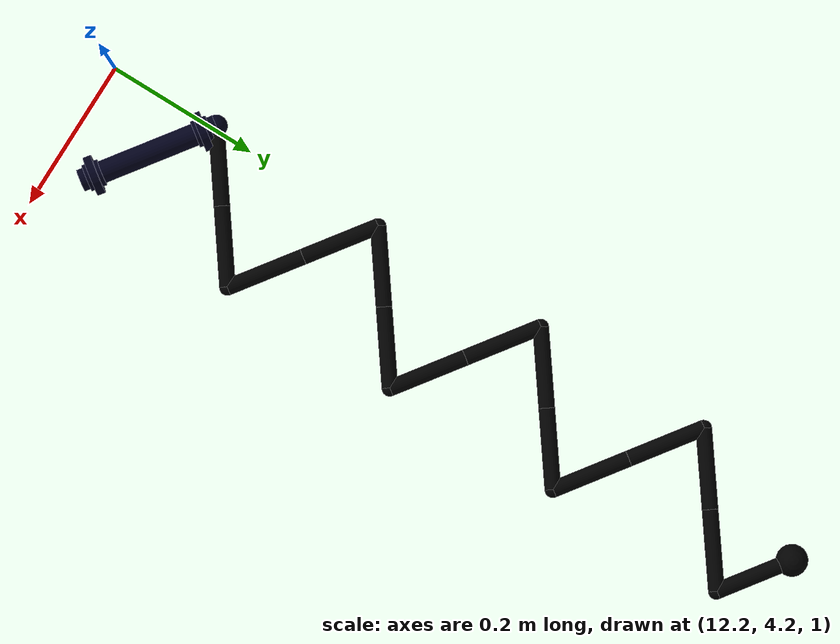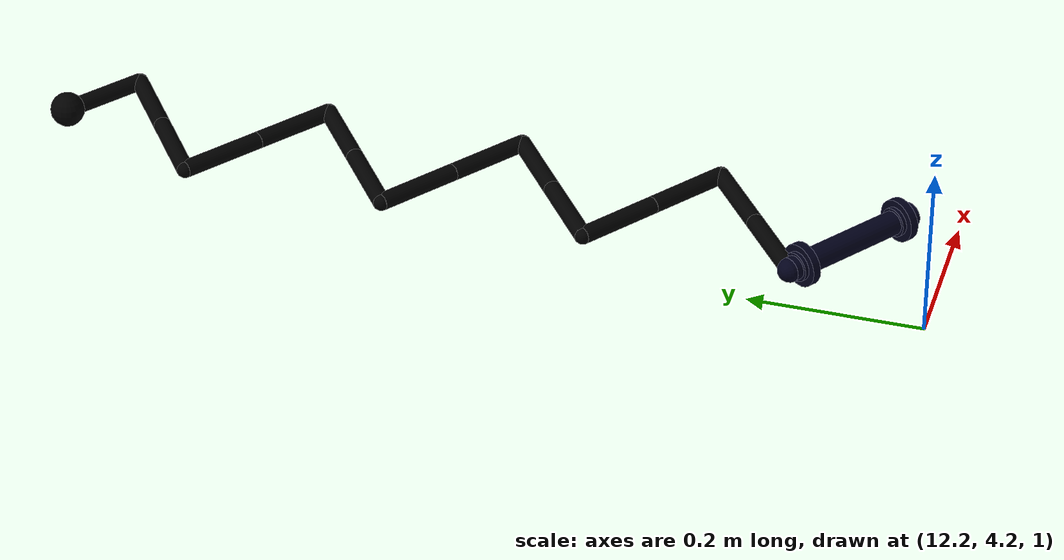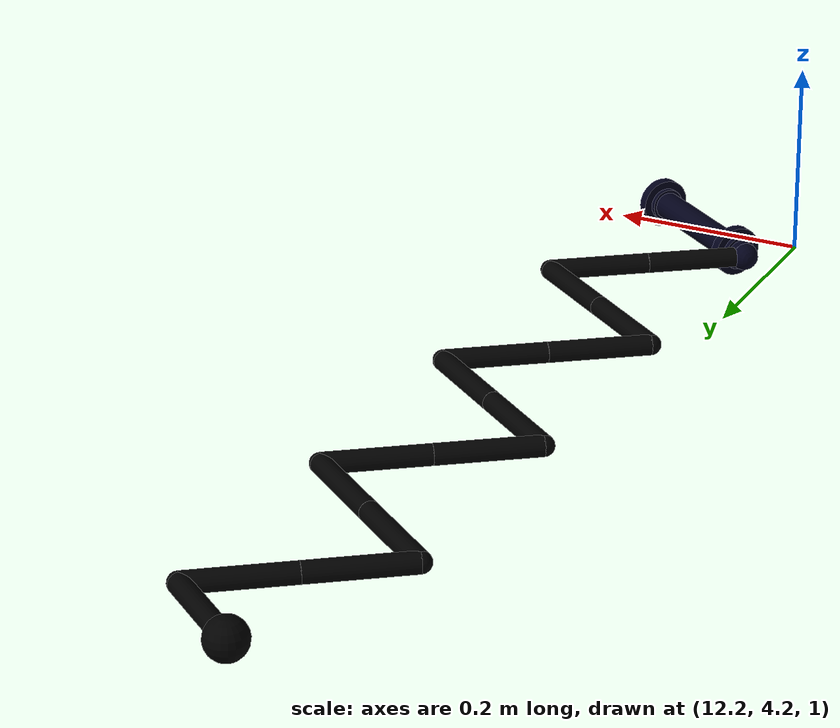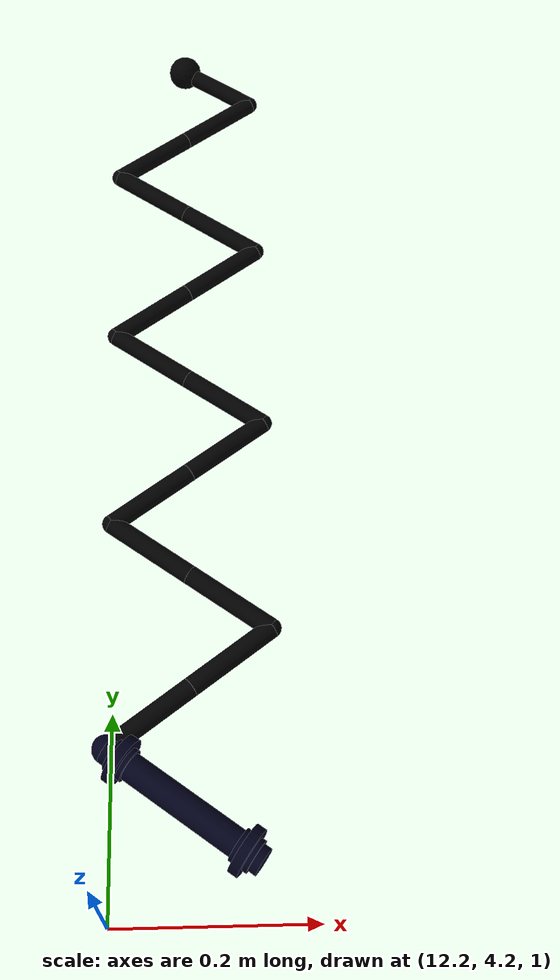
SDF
<sdf version="1.6">
 <world name="default">
  <model name="solar_panel_cable">
   <self_collide>1</self_collide>
   <pose>12.2793 5.2337 1.05 0 0 -1.5708</pose>
   <link name="link_0">
    <inertial>
     <mass>0.05</mass>
     <inertia><ixx>0.0001</ixx><iyy>0.0001</iyy><izz>0.0001</izz><ixy>0</ixy><ixz>0</ixz><iyz>0</iyz></inertia>
    </inertial>
    <visual name="visual">
     <geometry><sphere><radius>0.02</radius></sphere></geometry>
     <material>
      <ambient>0 0 0 1</ambient>
      <emissive>0 0 0 1</emissive>
      <diffuse>0 0 0 1</diffuse>
      <specular>1 1 1 1</specular>
     </material>
    </visual>
    <self_collide>1</self_collide>
   </link>
   <link name="link_1">
    <pose>0 0 0 -0.942478 1.5708 0</pose>
    <inertial>
     <pose>0 0 0.05 0 -0 0</pose>
     <mass>0.05</mass>
     <inertia><ixx>0.0001</ixx><iyy>0.0001</iyy><izz>0.0001</izz><ixy>0</ixy><ixz>0</ixz><iyz>0</iyz></inertia>
    </inertial>
    <collision name="cylinder">
     <pose>0 0 0.05 0 -0 0</pose>
     <geometry><cylinder><length>0.1</length><radius>0.01</radius></cylinder></geometry>
     <surface>
      <contact><ode><kp>100000</kp><kd>1</kd><max_vel>0.1</max_vel><min_depth>0.0015</min_depth></ode></contact>
      <friction><ode><mu>1</mu><mu2>1</mu2></ode></friction>
     </surface>
    </collision>
    <visual name="cylinder">
     <pose>0 0 0.05 0 -0 0</pose>
     <geometry><cylinder><length>0.1</length><radius>0.01</radius></cylinder></geometry>
     <material>
      <ambient>0 0 0 1</ambient>
      <emissive>0 0 0 1</emissive>
      <diffuse>0 0 0 1</diffuse>
      <specular>1 1 1 1</specular>
     </material>
    </visual>
    <collision name="sphere">
     <geometry><sphere><radius>0.01</radius></sphere></geometry>
     <surface>
      <contact><ode><kp>100000</kp><kd>1</kd><max_vel>0.1</max_vel><min_depth>0.0015</min_depth></ode></contact>
      <friction><ode><mu>1</mu><mu2>1</mu2></ode></friction>
     </surface>
    </collision>
    <visual name="sphere">
     <geometry><sphere><radius>0.01</radius></sphere></geometry>
     <material>
      <ambient>0 0 0 1</ambient>
      <emissive>0 0 0 1</emissive>
      <diffuse>0 0 0 1</diffuse>
      <specular>1 1 1 1</specular>
     </material>
    </visual>
    <self_collide>1</self_collide>
   </link>
   <joint name="joint_1" type="universal">
    <child>link_1</child>
    <parent>link_0</parent>
    <axis>
     <xyz>0 1 0</xyz>
     <limit><lower>-1.5708</lower><upper>1.5708</upper></limit>
     <use_parent_model_frame>0</use_parent_model_frame>
     <dynamics><spring_reference>0</spring_reference><spring_stiffness>0</spring_stiffness></dynamics>
    </axis>
    <axis2>
     <xyz>-1 0 0</xyz>
     <limit><lower>-1.5708</lower><upper>1.5708</upper></limit>
     <use_parent_model_frame>0</use_parent_model_frame>
     <dynamics><spring_reference>0</spring_reference><spring_stiffness>0</spring_stiffness></dynamics>
    </axis2>
    <physics><ode><cfm_damping>1</cfm_damping><limit><cfm>0</cfm><erp>0.2</erp></limit></ode></physics>
   </joint>
   <link name="link_2">
    <pose>0.058779 0.080902 0 0.942478 1.5708 0</pose>
    <inertial>
     <pose>0 0 0.05 0 -0 0</pose>
     <mass>0.05</mass>
     <inertia><ixx>0.0001</ixx><iyy>0.0001</iyy><izz>0.0001</izz><ixy>0</ixy><ixz>0</ixz><iyz>0</iyz></inertia>
    </inertial>
    <collision name="cylinder">
     <pose>0 0 0.05 0 -0 0</pose>
     <geometry><cylinder><length>0.1</length><radius>0.01</radius></cylinder></geometry>
     <surface>
      <contact><ode><kp>100000</kp><kd>1</kd><max_vel>0.1</max_vel><min_depth>0.0015</min_depth></ode></contact>
      <friction><ode><mu>1</mu><mu2>1</mu2></ode></friction>
     </surface>
    </collision>
    <visual name="cylinder">
     <pose>0 0 0.05 0 -0 0</pose>
     <geometry><cylinder><length>0.1</length><radius>0.01</radius></cylinder></geometry>
     <material>
      <ambient>0 0 0 1</ambient>
      <emissive>0 0 0 1</emissive>
      <diffuse>0 0 0 1</diffuse>
      <specular>1 1 1 1</specular>
     </material>
    </visual>
    <collision name="sphere">
     <geometry><sphere><radius>0.01</radius></sphere></geometry>
     <surface>
      <contact><ode><kp>100000</kp><kd>1</kd><max_vel>0.1</max_vel><min_depth>0.0015</min_depth></ode></contact>
      <friction><ode><mu>1</mu><mu2>1</mu2></ode></friction>
     </surface>
    </collision>
    <visual name="sphere">
     <geometry><sphere><radius>0.01</radius></sphere></geometry>
     <material>
      <ambient>0 0 0 1</ambient>
      <emissive>0 0 0 1</emissive>
      <diffuse>0 0 0 1</diffuse>
      <specular>1 1 1 1</specular>
     </material>
    </visual>
    <self_collide>1</self_collide>
   </link>
   <joint name="joint_2" type="universal">
    <child>link_2</child>
    <parent>link_1</parent>
    <axis>
     <xyz>0 1 0</xyz>
     <limit><lower>-1.5708</lower><upper>1.5708</upper></limit>
     <use_parent_model_frame>0</use_parent_model_frame>
     <dynamics><spring_reference>0</spring_reference><spring_stiffness>0</spring_stiffness></dynamics>
    </axis>
    <axis2>
     <xyz>-1 0 0</xyz>
     <limit><lower>-1.5708</lower><upper>1.5708</upper></limit>
     <use_parent_model_frame>0</use_parent_model_frame>
     <dynamics><spring_reference>0</spring_reference><spring_stiffness>0</spring_stiffness></dynamics>
    </axis2>
    <physics><ode><cfm_damping>1</cfm_damping><limit><cfm>0</cfm><erp>0.2</erp></limit></ode></physics>
   </joint>
   <link name="link_3">
    <pose>0.117557 0 0 0.942478 1.5708 0</pose>
    <inertial>
     <pose>0 0 0.05 0 -0 0</pose>
     <mass>0.05</mass>
     <inertia><ixx>0.0001</ixx><iyy>0.0001</iyy><izz>0.0001</izz><ixy>0</ixy><ixz>0</ixz><iyz>0</iyz></inertia>
    </inertial>
    <collision name="cylinder">
     <pose>0 0 0.05 0 -0 0</pose>
     <geometry><cylinder><length>0.1</length><radius>0.01</radius></cylinder></geometry>
     <surface>
      <contact><ode><kp>100000</kp><kd>1</kd><max_vel>0.1</max_vel><min_depth>0.0015</min_depth></ode></contact>
      <friction><ode><mu>1</mu><mu2>1</mu2></ode></friction>
     </surface>
    </collision>
    <visual name="cylinder">
     <pose>0 0 0.05 0 -0 0</pose>
     <geometry><cylinder><length>0.1</length><radius>0.01</radius></cylinder></geometry>
     <material>
      <ambient>0 0 0 1</ambient>
      <emissive>0 0 0 1</emissive>
      <diffuse>0 0 0 1</diffuse>
      <specular>1 1 1 1</specular>
     </material>
    </visual>
    <collision name="sphere">
     <geometry><sphere><radius>0.01</radius></sphere></geometry>
     <surface>
      <contact><ode><kp>100000</kp><kd>1</kd><max_vel>0.1</max_vel><min_depth>0.0015</min_depth></ode></contact>
      <friction><ode><mu>1</mu><mu2>1</mu2></ode></friction>
     </surface>
    </collision>
    <visual name="sphere">
     <geometry><sphere><radius>0.01</radius></sphere></geometry>
     <material>
      <ambient>0 0 0 1</ambient>
      <emissive>0 0 0 1</emissive>
      <diffuse>0 0 0 1</diffuse>
      <specular>1 1 1 1</specular>
     </material>
    </visual>
    <self_collide>1</self_collide>
   </link>
   <joint name="joint_3" type="universal">
    <child>link_3</child>
    <parent>link_2</parent>
    <axis>
     <xyz>0 1 0</xyz>
     <limit><lower>-1.5708</lower><upper>1.5708</upper></limit>
     <use_parent_model_frame>0</use_parent_model_frame>
     <dynamics><spring_reference>0</spring_reference><spring_stiffness>0</spring_stiffness></dynamics>
    </axis>
    <axis2>
     <xyz>-1 0 0</xyz>
     <limit><lower>-1.5708</lower><upper>1.5708</upper></limit>
     <use_parent_model_frame>0</use_parent_model_frame>
     <dynamics><spring_reference>0</spring_reference><spring_stiffness>0</spring_stiffness></dynamics>
    </axis2>
    <physics><ode><cfm_damping>1</cfm_damping><limit><cfm>0</cfm><erp>0.2</erp></limit></ode></physics>
   </joint>
   <link name="link_4">
    <pose>0.176336 -0.080902 0 -0.942478 1.5708 0</pose>
    <inertial>
     <pose>0 0 0.05 0 -0 0</pose>
     <mass>0.05</mass>
     <inertia><ixx>0.0001</ixx><iyy>0.0001</iyy><izz>0.0001</izz><ixy>0</ixy><ixz>0</ixz><iyz>0</iyz></inertia>
    </inertial>
    <collision name="cylinder">
     <pose>0 0 0.05 0 -0 0</pose>
     <geometry><cylinder><length>0.1</length><radius>0.01</radius></cylinder></geometry>
     <surface>
      <contact><ode><kp>100000</kp><kd>1</kd><max_vel>0.1</max_vel><min_depth>0.0015</min_depth></ode></contact>
      <friction><ode><mu>1</mu><mu2>1</mu2></ode></friction>
     </surface>
    </collision>
    <visual name="cylinder">
     <pose>0 0 0.05 0 -0 0</pose>
     <geometry><cylinder><length>0.1</length><radius>0.01</radius></cylinder></geometry>
     <material>
      <ambient>0 0 0 1</ambient>
      <emissive>0 0 0 1</emissive>
      <diffuse>0 0 0 1</diffuse>
      <specular>1 1 1 1</specular>
     </material>
    </visual>
    <collision name="sphere">
     <geometry><sphere><radius>0.01</radius></sphere></geometry>
     <surface>
      <contact><ode><kp>100000</kp><kd>1</kd><max_vel>0.1</max_vel><min_depth>0.0015</min_depth></ode></contact>
      <friction><ode><mu>1</mu><mu2>1</mu2></ode></friction>
     </surface>
    </collision>
    <visual name="sphere">
     <geometry><sphere><radius>0.01</radius></sphere></geometry>
     <material>
      <ambient>0 0 0 1</ambient>
      <emissive>0 0 0 1</emissive>
      <diffuse>0 0 0 1</diffuse>
      <specular>1 1 1 1</specular>
     </material>
    </visual>
    <self_collide>1</self_collide>
   </link>
   <joint name="joint_4" type="universal">
    <child>link_4</child>
    <parent>link_3</parent>
    <axis>
     <xyz>0 1 0</xyz>
     <limit><lower>-1.5708</lower><upper>1.5708</upper></limit>
     <use_parent_model_frame>0</use_parent_model_frame>
     <dynamics><spring_reference>0</spring_reference><spring_stiffness>0</spring_stiffness></dynamics>
    </axis>
    <axis2>
     <xyz>-1 0 0</xyz>
     <limit><lower>-1.5708</lower><upper>1.5708</upper></limit>
     <use_parent_model_frame>0</use_parent_model_frame>
     <dynamics><spring_reference>0</spring_reference><spring_stiffness>0</spring_stiffness></dynamics>
    </axis2>
    <physics><ode><cfm_damping>1</cfm_damping><limit><cfm>0</cfm><erp>0.2</erp></limit></ode></physics>
   </joint>
   <link name="link_5">
    <pose>0.235114 0 0 -0.942478 1.5708 0</pose>
    <inertial>
     <pose>0 0 0.05 0 -0 0</pose>
     <mass>0.05</mass>
     <inertia><ixx>0.0001</ixx><iyy>0.0001</iyy><izz>0.0001</izz><ixy>0</ixy><ixz>0</ixz><iyz>0</iyz></inertia>
    </inertial>
    <collision name="cylinder">
     <pose>0 0 0.05 0 -0 0</pose>
     <geometry><cylinder><length>0.1</length><radius>0.01</radius></cylinder></geometry>
     <surface>
      <contact><ode><kp>100000</kp><kd>1</kd><max_vel>0.1</max_vel><min_depth>0.0015</min_depth></ode></contact>
      <friction><ode><mu>1</mu><mu2>1</mu2></ode></friction>
     </surface>
    </collision>
    <visual name="cylinder">
     <pose>0 0 0.05 0 -0 0</pose>
     <geometry><cylinder><length>0.1</length><radius>0.01</radius></cylinder></geometry>
     <material>
      <ambient>0 0 0 1</ambient>
      <emissive>0 0 0 1</emissive>
      <diffuse>0 0 0 1</diffuse>
      <specular>1 1 1 1</specular>
     </material>
    </visual>
    <collision name="sphere">
     <geometry><sphere><radius>0.01</radius></sphere></geometry>
     <surface>
      <contact><ode><kp>100000</kp><kd>1</kd><max_vel>0.1</max_vel><min_depth>0.0015</min_depth></ode></contact>
      <friction><ode><mu>1</mu><mu2>1</mu2></ode></friction>
     </surface>
    </collision>
    <visual name="sphere">
     <geometry><sphere><radius>0.01</radius></sphere></geometry>
     <material>
      <ambient>0 0 0 1</ambient>
      <emissive>0 0 0 1</emissive>
      <diffuse>0 0 0 1</diffuse>
      <specular>1 1 1 1</specular>
     </material>
    </visual>
    <self_collide>1</self_collide>
   </link>
   <joint name="joint_5" type="universal">
    <child>link_5</child>
    <parent>link_4</parent>
    <axis>
     <xyz>0 1 0</xyz>
     <limit><lower>-1.5708</lower><upper>1.5708</upper></limit>
     <use_parent_model_frame>0</use_parent_model_frame>
     <dynamics><spring_reference>0</spring_reference><spring_stiffness>0</spring_stiffness></dynamics>
    </axis>
    <axis2>
     <xyz>-1 0 0</xyz>
     <limit><lower>-1.5708</lower><upper>1.5708</upper></limit>
     <use_parent_model_frame>0</use_parent_model_frame>
     <dynamics><spring_reference>0</spring_reference><spring_stiffness>0</spring_stiffness></dynamics>
    </axis2>
    <physics><ode><cfm_damping>1</cfm_damping><limit><cfm>0</cfm><erp>0.2</erp></limit></ode></physics>
   </joint>
   <link name="link_6">
    <pose>0.293893 0.080902 0 0.942478 1.5708 0</pose>
    <inertial>
     <pose>0 0 0.05 0 -0 0</pose>
     <mass>0.05</mass>
     <inertia><ixx>0.0001</ixx><iyy>0.0001</iyy><izz>0.0001</izz><ixy>0</ixy><ixz>0</ixz><iyz>0</iyz></inertia>
    </inertial>
    <collision name="cylinder">
     <pose>0 0 0.05 0 -0 0</pose>
     <geometry><cylinder><length>0.1</length><radius>0.01</radius></cylinder></geometry>
     <surface>
      <contact><ode><kp>100000</kp><kd>1</kd><max_vel>0.1</max_vel><min_depth>0.0015</min_depth></ode></contact>
      <friction><ode><mu>1</mu><mu2>1</mu2></ode></friction>
     </surface>
    </collision>
    <visual name="cylinder">
     <pose>0 0 0.05 0 -0 0</pose>
     <geometry><cylinder><length>0.1</length><radius>0.01</radius></cylinder></geometry>
     <material>
      <ambient>0 0 0 1</ambient>
      <emissive>0 0 0 1</emissive>
      <diffuse>0 0 0 1</diffuse>
      <specular>1 1 1 1</specular>
     </material>
    </visual>
    <collision name="sphere">
     <geometry><sphere><radius>0.01</radius></sphere></geometry>
     <surface>
      <contact><ode><kp>100000</kp><kd>1</kd><max_vel>0.1</max_vel><min_depth>0.0015</min_depth></ode></contact>
      <friction><ode><mu>1</mu><mu2>1</mu2></ode></friction>
     </surface>
    </collision>
    <visual name="sphere">
     <geometry><sphere><radius>0.01</radius></sphere></geometry>
     <material>
      <ambient>0 0 0 1</ambient>
      <emissive>0 0 0 1</emissive>
      <diffuse>0 0 0 1</diffuse>
      <specular>1 1 1 1</specular>
     </material>
    </visual>
    <self_collide>1</self_collide>
   </link>
   <joint name="joint_6" type="universal">
    <child>link_6</child>
    <parent>link_5</parent>
    <axis>
     <xyz>0 1 0</xyz>
     <limit><lower>-1.5708</lower><upper>1.5708</upper></limit>
     <use_parent_model_frame>0</use_parent_model_frame>
     <dynamics><spring_reference>0</spring_reference><spring_stiffness>0</spring_stiffness></dynamics>
    </axis>
    <axis2>
     <xyz>-1 0 0</xyz>
     <limit><lower>-1.5708</lower><upper>1.5708</upper></limit>
     <use_parent_model_frame>0</use_parent_model_frame>
     <dynamics><spring_reference>0</spring_reference><spring_stiffness>0</spring_stiffness></dynamics>
    </axis2>
    <physics><ode><cfm_damping>1</cfm_damping><limit><cfm>0</cfm><erp>0.2</erp></limit></ode></physics>
   </joint>
   <link name="link_7">
    <pose>0.352671 0 0 0.942478 1.5708 0</pose>
    <inertial>
     <pose>0 0 0.05 0 -0 0</pose>
     <mass>0.05</mass>
     <inertia><ixx>0.0001</ixx><iyy>0.0001</iyy><izz>0.0001</izz><ixy>0</ixy><ixz>0</ixz><iyz>0</iyz></inertia>
    </inertial>
    <collision name="cylinder">
     <pose>0 0 0.05 0 -0 0</pose>
     <geometry><cylinder><length>0.1</length><radius>0.01</radius></cylinder></geometry>
     <surface>
      <contact><ode><kp>100000</kp><kd>1</kd><max_vel>0.1</max_vel><min_depth>0.0015</min_depth></ode></contact>
      <friction><ode><mu>1</mu><mu2>1</mu2></ode></friction>
     </surface>
    </collision>
    <visual name="cylinder">
     <pose>0 0 0.05 0 -0 0</pose>
     <geometry><cylinder><length>0.1</length><radius>0.01</radius></cylinder></geometry>
     <material>
      <ambient>0 0 0 1</ambient>
      <emissive>0 0 0 1</emissive>
      <diffuse>0 0 0 1</diffuse>
      <specular>1 1 1 1</specular>
     </material>
    </visual>
    <collision name="sphere">
     <geometry><sphere><radius>0.01</radius></sphere></geometry>
     <surface>
      <contact><ode><kp>100000</kp><kd>1</kd><max_vel>0.1</max_vel><min_depth>0.0015</min_depth></ode></contact>
      <friction><ode><mu>1</mu><mu2>1</mu2></ode></friction>
     </surface>
    </collision>
    <visual name="sphere">
     <geometry><sphere><radius>0.01</radius></sphere></geometry>
     <material>
      <ambient>0 0 0 1</ambient>
      <emissive>0 0 0 1</emissive>
      <diffuse>0 0 0 1</diffuse>
      <specular>1 1 1 1</specular>
     </material>
    </visual>
    <self_collide>1</self_collide>
   </link>
   <joint name="joint_7" type="universal">
    <child>link_7</child>
    <parent>link_6</parent>
    <axis>
     <xyz>0 1 0</xyz>
     <limit><lower>-1.5708</lower><upper>1.5708</upper></limit>
     <use_parent_model_frame>0</use_parent_model_frame>
     <dynamics><spring_reference>0</spring_reference><spring_stiffness>0</spring_stiffness></dynamics>
    </axis>
    <axis2>
     <xyz>-1 0 0</xyz>
     <limit><lower>-1.5708</lower><upper>1.5708</upper></limit>
     <use_parent_model_frame>0</use_parent_model_frame>
     <dynamics><spring_reference>0</spring_reference><spring_stiffness>0</spring_stiffness></dynamics>
    </axis2>
    <physics><ode><cfm_damping>1</cfm_damping><limit><cfm>0</cfm><erp>0.2</erp></limit></ode></physics>
   </joint>
   <link name="link_8">
    <pose>0.41145 -0.080902 0 -0.942478 1.5708 0</pose>
    <inertial>
     <pose>0 0 0.05 0 -0 0</pose>
     <mass>0.05</mass>
     <inertia><ixx>0.0001</ixx><iyy>0.0001</iyy><izz>0.0001</izz><ixy>0</ixy><ixz>0</ixz><iyz>0</iyz></inertia>
    </inertial>
    <collision name="cylinder">
     <pose>0 0 0.05 0 -0 0</pose>
     <geometry><cylinder><length>0.1</length><radius>0.01</radius></cylinder></geometry>
     <surface>
      <contact><ode><kp>100000</kp><kd>1</kd><max_vel>0.1</max_vel><min_depth>0.0015</min_depth></ode></contact>
      <friction><ode><mu>1</mu><mu2>1</mu2></ode></friction>
     </surface>
    </collision>
    <visual name="cylinder">
     <pose>0 0 0.05 0 -0 0</pose>
     <geometry><cylinder><length>0.1</length><radius>0.01</radius></cylinder></geometry>
     <material>
      <ambient>0 0 0 1</ambient>
      <emissive>0 0 0 1</emissive>
      <diffuse>0 0 0 1</diffuse>
      <specular>1 1 1 1</specular>
     </material>
    </visual>
    <collision name="sphere">
     <geometry><sphere><radius>0.01</radius></sphere></geometry>
     <surface>
      <contact><ode><kp>100000</kp><kd>1</kd><max_vel>0.1</max_vel><min_depth>0.0015</min_depth></ode></contact>
      <friction><ode><mu>1</mu><mu2>1</mu2></ode></friction>
     </surface>
    </collision>
    <visual name="sphere">
     <geometry><sphere><radius>0.01</radius></sphere></geometry>
     <material>
      <ambient>0 0 0 1</ambient>
      <emissive>0 0 0 1</emissive>
      <diffuse>0 0 0 1</diffuse>
      <specular>1 1 1 1</specular>
     </material>
    </visual>
    <self_collide>1</self_collide>
   </link>
   <joint name="joint_8" type="universal">
    <child>link_8</child>
    <parent>link_7</parent>
    <axis>
     <xyz>0 1 0</xyz>
     <limit><lower>-1.5708</lower><upper>1.5708</upper></limit>
     <use_parent_model_frame>0</use_parent_model_frame>
     <dynamics><spring_reference>0</spring_reference><spring_stiffness>0</spring_stiffness></dynamics>
    </axis>
    <axis2>
     <xyz>-1 0 0</xyz>
     <limit><lower>-1.5708</lower><upper>1.5708</upper></limit>
     <use_parent_model_frame>0</use_parent_model_frame>
     <dynamics><spring_reference>0</spring_reference><spring_stiffness>0</spring_stiffness></dynamics>
    </axis2>
    <physics><ode><cfm_damping>1</cfm_damping><limit><cfm>0</cfm><erp>0.2</erp></limit></ode></physics>
   </joint>
   <link name="link_9">
    <pose>0.470228 0 0 -0.942478 1.5708 0</pose>
    <inertial>
     <pose>0 0 0.05 0 -0 0</pose>
     <mass>0.05</mass>
     <inertia><ixx>0.0001</ixx><iyy>0.0001</iyy><izz>0.0001</izz><ixy>0</ixy><ixz>0</ixz><iyz>0</iyz></inertia>
    </inertial>
    <collision name="cylinder">
     <pose>0 0 0.05 0 -0 0</pose>
     <geometry><cylinder><length>0.1</length><radius>0.01</radius></cylinder></geometry>
     <surface>
      <contact><ode><kp>100000</kp><kd>1</kd><max_vel>0.1</max_vel><min_depth>0.0015</min_depth></ode></contact>
      <friction><ode><mu>1</mu><mu2>1</mu2></ode></friction>
     </surface>
    </collision>
    <visual name="cylinder">
     <pose>0 0 0.05 0 -0 0</pose>
     <geometry><cylinder><length>0.1</length><radius>0.01</radius></cylinder></geometry>
     <material>
      <ambient>0 0 0 1</ambient>
      <emissive>0 0 0 1</emissive>
      <diffuse>0 0 0 1</diffuse>
      <specular>1 1 1 1</specular>
     </material>
    </visual>
    <collision name="sphere">
     <geometry><sphere><radius>0.01</radius></sphere></geometry>
     <surface>
      <contact><ode><kp>100000</kp><kd>1</kd><max_vel>0.1</max_vel><min_depth>0.0015</min_depth></ode></contact>
      <friction><ode><mu>1</mu><mu2>1</mu2></ode></friction>
     </surface>
    </collision>
    <visual name="sphere">
     <geometry><sphere><radius>0.01</radius></sphere></geometry>
     <material>
      <ambient>0 0 0 1</ambient>
      <emissive>0 0 0 1</emissive>
      <diffuse>0 0 0 1</diffuse>
      <specular>1 1 1 1</specular>
     </material>
    </visual>
    <self_collide>1</self_collide>
   </link>
   <joint name="joint_9" type="universal">
    <child>link_9</child>
    <parent>link_8</parent>
    <axis>
     <xyz>0 1 0</xyz>
     <limit><lower>-1.5708</lower><upper>1.5708</upper></limit>
     <use_parent_model_frame>0</use_parent_model_frame>
     <dynamics><spring_reference>0</spring_reference><spring_stiffness>0</spring_stiffness></dynamics>
    </axis>
    <axis2>
     <xyz>-1 0 0</xyz>
     <limit><lower>-1.5708</lower><upper>1.5708</upper></limit>
     <use_parent_model_frame>0</use_parent_model_frame>
     <dynamics><spring_reference>0</spring_reference><spring_stiffness>0</spring_stiffness></dynamics>
    </axis2>
    <physics><ode><cfm_damping>1</cfm_damping><limit><cfm>0</cfm><erp>0.2</erp></limit></ode></physics>
   </joint>
   <link name="link_10">
    <pose>0.529007 0.080902 0 0.942478 1.5708 0</pose>
    <inertial>
     <pose>0 0 0.05 0 -0 0</pose>
     <mass>0.05</mass>
     <inertia><ixx>0.0001</ixx><iyy>0.0001</iyy><izz>0.0001</izz><ixy>0</ixy><ixz>0</ixz><iyz>0</iyz></inertia>
    </inertial>
    <collision name="cylinder">
     <pose>0 0 0.05 0 -0 0</pose>
     <geometry><cylinder><length>0.1</length><radius>0.01</radius></cylinder></geometry>
     <surface>
      <contact><ode><kp>100000</kp><kd>1</kd><max_vel>0.1</max_vel><min_depth>0.0015</min_depth></ode></contact>
      <friction><ode><mu>1</mu><mu2>1</mu2></ode></friction>
     </surface>
    </collision>
    <visual name="cylinder">
     <pose>0 0 0.05 0 -0 0</pose>
     <geometry><cylinder><length>0.1</length><radius>0.01</radius></cylinder></geometry>
     <material>
      <ambient>0 0 0 1</ambient>
      <emissive>0 0 0 1</emissive>
      <diffuse>0 0 0 1</diffuse>
      <specular>1 1 1 1</specular>
     </material>
    </visual>
    <collision name="sphere">
     <geometry><sphere><radius>0.01</radius></sphere></geometry>
     <surface>
      <contact><ode><kp>100000</kp><kd>1</kd><max_vel>0.1</max_vel><min_depth>0.0015</min_depth></ode></contact>
      <friction><ode><mu>1</mu><mu2>1</mu2></ode></friction>
     </surface>
    </collision>
    <visual name="sphere">
     <geometry><sphere><radius>0.01</radius></sphere></geometry>
     <material>
      <ambient>0 0 0 1</ambient>
      <emissive>0 0 0 1</emissive>
      <diffuse>0 0 0 1</diffuse>
      <specular>1 1 1 1</specular>
     </material>
    </visual>
    <self_collide>1</self_collide>
   </link>
   <joint name="joint_10" type="universal">
    <child>link_10</child>
    <parent>link_9</parent>
    <axis>
     <xyz>0 1 0</xyz>
     <limit><lower>-1.5708</lower><upper>1.5708</upper></limit>
     <use_parent_model_frame>0</use_parent_model_frame>
     <dynamics><spring_reference>0</spring_reference><spring_stiffness>0</spring_stiffness></dynamics>
    </axis>
    <axis2>
     <xyz>-1 0 0</xyz>
     <limit><lower>-1.5708</lower><upper>1.5708</upper></limit>
     <use_parent_model_frame>0</use_parent_model_frame>
     <dynamics><spring_reference>0</spring_reference><spring_stiffness>0</spring_stiffness></dynamics>
    </axis2>
    <physics><ode><cfm_damping>1</cfm_damping><limit><cfm>0</cfm><erp>0.2</erp></limit></ode></physics>
   </joint>
   <link name="link_11">
    <pose>0.587785 0 0 0.942478 1.5708 0</pose>
    <inertial>
     <pose>0 0 0.05 0 -0 0</pose>
     <mass>0.05</mass>
     <inertia><ixx>0.0001</ixx><iyy>0.0001</iyy><izz>0.0001</izz><ixy>0</ixy><ixz>0</ixz><iyz>0</iyz></inertia>
    </inertial>
    <collision name="cylinder">
     <pose>0 0 0.05 0 -0 0</pose>
     <geometry><cylinder><length>0.1</length><radius>0.01</radius></cylinder></geometry>
     <surface>
      <contact><ode><kp>100000</kp><kd>1</kd><max_vel>0.1</max_vel><min_depth>0.0015</min_depth></ode></contact>
      <friction><ode><mu>1</mu><mu2>1</mu2></ode></friction>
     </surface>
    </collision>
    <visual name="cylinder">
     <pose>0 0 0.05 0 -0 0</pose>
     <geometry><cylinder><length>0.1</length><radius>0.01</radius></cylinder></geometry>
     <material>
      <ambient>0 0 0 1</ambient>
      <emissive>0 0 0 1</emissive>
      <diffuse>0 0 0 1</diffuse>
      <specular>1 1 1 1</specular>
     </material>
    </visual>
    <collision name="sphere">
     <geometry><sphere><radius>0.01</radius></sphere></geometry>
     <surface>
      <contact><ode><kp>100000</kp><kd>1</kd><max_vel>0.1</max_vel><min_depth>0.0015</min_depth></ode></contact>
      <friction><ode><mu>1</mu><mu2>1</mu2></ode></friction>
     </surface>
    </collision>
    <visual name="sphere">
     <geometry><sphere><radius>0.01</radius></sphere></geometry>
     <material>
      <ambient>0 0 0 1</ambient>
      <emissive>0 0 0 1</emissive>
      <diffuse>0 0 0 1</diffuse>
      <specular>1 1 1 1</specular>
     </material>
    </visual>
    <self_collide>1</self_collide>
   </link>
   <joint name="joint_11" type="universal">
    <child>link_11</child>
    <parent>link_10</parent>
    <axis>
     <xyz>0 1 0</xyz>
     <limit><lower>-1.5708</lower><upper>1.5708</upper></limit>
     <use_parent_model_frame>0</use_parent_model_frame>
     <dynamics><spring_reference>0</spring_reference><spring_stiffness>0</spring_stiffness></dynamics>
    </axis>
    <axis2>
     <xyz>-1 0 0</xyz>
     <limit><lower>-1.5708</lower><upper>1.5708</upper></limit>
     <use_parent_model_frame>0</use_parent_model_frame>
     <dynamics><spring_reference>0</spring_reference><spring_stiffness>0</spring_stiffness></dynamics>
    </axis2>
    <physics><ode><cfm_damping>1</cfm_damping><limit><cfm>0</cfm><erp>0.2</erp></limit></ode></physics>
   </joint>
   <link name="link_12">
    <pose>0.646564 -0.080902 0 -0.942478 1.5708 0</pose>
    <inertial>
     <pose>0 0 0.05 0 -0 0</pose>
     <mass>0.05</mass>
     <inertia><ixx>0.0001</ixx><iyy>0.0001</iyy><izz>0.0001</izz><ixy>0</ixy><ixz>0</ixz><iyz>0</iyz></inertia>
    </inertial>
    <collision name="cylinder">
     <pose>0 0 0.05 0 -0 0</pose>
     <geometry><cylinder><length>0.1</length><radius>0.01</radius></cylinder></geometry>
     <surface>
      <contact><ode><kp>100000</kp><kd>1</kd><max_vel>0.1</max_vel><min_depth>0.0015</min_depth></ode></contact>
      <friction><ode><mu>1</mu><mu2>1</mu2></ode></friction>
     </surface>
    </collision>
    <visual name="cylinder">
     <pose>0 0 0.05 0 -0 0</pose>
     <geometry><cylinder><length>0.1</length><radius>0.01</radius></cylinder></geometry>
     <material>
      <ambient>0 0 0 1</ambient>
      <emissive>0 0 0 1</emissive>
      <diffuse>0 0 0 1</diffuse>
      <specular>1 1 1 1</specular>
     </material>
    </visual>
    <collision name="sphere">
     <geometry><sphere><radius>0.01</radius></sphere></geometry>
     <surface>
      <contact><ode><kp>100000</kp><kd>1</kd><max_vel>0.1</max_vel><min_depth>0.0015</min_depth></ode></contact>
      <friction><ode><mu>1</mu><mu2>1</mu2></ode></friction>
     </surface>
    </collision>
    <visual name="sphere">
     <geometry><sphere><radius>0.01</radius></sphere></geometry>
     <material>
      <ambient>0 0 0 1</ambient>
      <emissive>0 0 0 1</emissive>
      <diffuse>0 0 0 1</diffuse>
      <specular>1 1 1 1</specular>
     </material>
    </visual>
    <self_collide>1</self_collide>
   </link>
   <joint name="joint_12" type="universal">
    <child>link_12</child>
    <parent>link_11</parent>
    <axis>
     <xyz>0 1 0</xyz>
     <limit><lower>-1.5708</lower><upper>1.5708</upper></limit>
     <use_parent_model_frame>0</use_parent_model_frame>
     <dynamics><spring_reference>0</spring_reference><spring_stiffness>0</spring_stiffness></dynamics>
    </axis>
    <axis2>
     <xyz>-1 0 0</xyz>
     <limit><lower>-1.5708</lower><upper>1.5708</upper></limit>
     <use_parent_model_frame>0</use_parent_model_frame>
     <dynamics><spring_reference>0</spring_reference><spring_stiffness>0</spring_stiffness></dynamics>
    </axis2>
    <physics><ode><cfm_damping>1</cfm_damping><limit><cfm>0</cfm><erp>0.2</erp></limit></ode></physics>
   </joint>
   <link name="link_13">
    <pose>0.705342 0 0 -0.942478 1.5708 0</pose>
    <inertial>
     <pose>0 0 0.05 0 -0 0</pose>
     <mass>0.05</mass>
     <inertia><ixx>0.0001</ixx><iyy>0.0001</iyy><izz>0.0001</izz><ixy>0</ixy><ixz>0</ixz><iyz>0</iyz></inertia>
    </inertial>
    <collision name="cylinder">
     <pose>0 0 0.05 0 -0 0</pose>
     <geometry><cylinder><length>0.1</length><radius>0.01</radius></cylinder></geometry>
     <surface>
      <contact><ode><kp>100000</kp><kd>1</kd><max_vel>0.1</max_vel><min_depth>0.0015</min_depth></ode></contact>
      <friction><ode><mu>1</mu><mu2>1</mu2></ode></friction>
     </surface>
    </collision>
    <visual name="cylinder">
     <pose>0 0 0.05 0 -0 0</pose>
     <geometry><cylinder><length>0.1</length><radius>0.01</radius></cylinder></geometry>
     <material>
      <ambient>0 0 0 1</ambient>
      <emissive>0 0 0 1</emissive>
      <diffuse>0 0 0 1</diffuse>
      <specular>1 1 1 1</specular>
     </material>
    </visual>
    <collision name="sphere">
     <geometry><sphere><radius>0.01</radius></sphere></geometry>
     <surface>
      <contact><ode><kp>100000</kp><kd>1</kd><max_vel>0.1</max_vel><min_depth>0.0015</min_depth></ode></contact>
      <friction><ode><mu>1</mu><mu2>1</mu2></ode></friction>
     </surface>
    </collision>
    <visual name="sphere">
     <geometry><sphere><radius>0.01</radius></sphere></geometry>
     <material>
      <ambient>0 0 0 1</ambient>
      <emissive>0 0 0 1</emissive>
      <diffuse>0 0 0 1</diffuse>
      <specular>1 1 1 1</specular>
     </material>
    </visual>
    <self_collide>1</self_collide>
   </link>
   <joint name="joint_13" type="universal">
    <child>link_13</child>
    <parent>link_12</parent>
    <axis>
     <xyz>0 1 0</xyz>
     <limit><lower>-1.5708</lower><upper>1.5708</upper></limit>
     <use_parent_model_frame>0</use_parent_model_frame>
     <dynamics><spring_reference>0</spring_reference><spring_stiffness>0</spring_stiffness></dynamics>
    </axis>
    <axis2>
     <xyz>-1 0 0</xyz>
     <limit><lower>-1.5708</lower><upper>1.5708</upper></limit>
     <use_parent_model_frame>0</use_parent_model_frame>
     <dynamics><spring_reference>0</spring_reference><spring_stiffness>0</spring_stiffness></dynamics>
    </axis2>
    <physics><ode><cfm_damping>1</cfm_damping><limit><cfm>0</cfm><erp>0.2</erp></limit></ode></physics>
   </joint>
   <link name="link_14">
    <pose>0.764121 0.080902 0 0.942478 1.5708 0</pose>
    <inertial>
     <pose>0 0 0.05 0 -0 0</pose>
     <mass>0.05</mass>
     <inertia><ixx>0.0001</ixx><iyy>0.0001</iyy><izz>0.0001</izz><ixy>0</ixy><ixz>0</ixz><iyz>0</iyz></inertia>
    </inertial>
    <collision name="cylinder">
     <pose>0 0 0.05 0 -0 0</pose>
     <geometry><cylinder><length>0.1</length><radius>0.01</radius></cylinder></geometry>
     <surface>
      <contact><ode><kp>100000</kp><kd>1</kd><max_vel>0.1</max_vel><min_depth>0.0015</min_depth></ode></contact>
      <friction><ode><mu>1</mu><mu2>1</mu2></ode></friction>
     </surface>
    </collision>
    <visual name="cylinder">
     <pose>0 0 0.05 0 -0 0</pose>
     <geometry><cylinder><length>0.1</length><radius>0.01</radius></cylinder></geometry>
     <material>
      <ambient>0 0 0 1</ambient>
      <emissive>0 0 0 1</emissive>
      <diffuse>0 0 0 1</diffuse>
      <specular>1 1 1 1</specular>
     </material>
    </visual>
    <collision name="sphere">
     <geometry><sphere><radius>0.01</radius></sphere></geometry>
     <surface>
      <contact><ode><kp>100000</kp><kd>1</kd><max_vel>0.1</max_vel><min_depth>0.0015</min_depth></ode></contact>
      <friction><ode><mu>1</mu><mu2>1</mu2></ode></friction>
     </surface>
    </collision>
    <visual name="sphere">
     <geometry><sphere><radius>0.01</radius></sphere></geometry>
     <material>
      <ambient>0 0 0 1</ambient>
      <emissive>0 0 0 1</emissive>
      <diffuse>0 0 0 1</diffuse>
      <specular>1 1 1 1</specular>
     </material>
    </visual>
    <self_collide>1</self_collide>
   </link>
   <joint name="joint_14" type="universal">
    <child>link_14</child>
    <parent>link_13</parent>
    <axis>
     <xyz>0 1 0</xyz>
     <limit><lower>-1.5708</lower><upper>1.5708</upper></limit>
     <use_parent_model_frame>0</use_parent_model_frame>
     <dynamics><spring_reference>0</spring_reference><spring_stiffness>0</spring_stiffness></dynamics>
    </axis>
    <axis2>
     <xyz>-1 0 0</xyz>
     <limit><lower>-1.5708</lower><upper>1.5708</upper></limit>
     <use_parent_model_frame>0</use_parent_model_frame>
     <dynamics><spring_reference>0</spring_reference><spring_stiffness>0</spring_stiffness></dynamics>
    </axis2>
    <physics><ode><cfm_damping>1</cfm_damping><limit><cfm>0</cfm><erp>0.2</erp></limit></ode></physics>
   </joint>
   <link name="link_15">
    <pose>0.822899 0 0 0.942478 1.5708 0</pose>
    <inertial>
     <pose>0 0 0.05 0 -0 0</pose>
     <mass>0.05</mass>
     <inertia><ixx>0.0001</ixx><iyy>0.0001</iyy><izz>0.0001</izz><ixy>0</ixy><ixz>0</ixz><iyz>0</iyz></inertia>
    </inertial>
    <collision name="cylinder">
     <pose>0 0 0.05 0 -0 0</pose>
     <geometry><cylinder><length>0.1</length><radius>0.01</radius></cylinder></geometry>
     <surface>
      <contact><ode><kp>100000</kp><kd>1</kd><max_vel>0.1</max_vel><min_depth>0.0015</min_depth></ode></contact>
      <friction><ode><mu>1</mu><mu2>1</mu2></ode></friction>
     </surface>
    </collision>
    <visual name="cylinder">
     <pose>0 0 0.05 0 -0 0</pose>
     <geometry><cylinder><length>0.1</length><radius>0.01</radius></cylinder></geometry>
     <material>
      <ambient>0 0 0 1</ambient>
      <emissive>0 0 0 1</emissive>
      <diffuse>0 0 0 1</diffuse>
      <specular>1 1 1 1</specular>
     </material>
    </visual>
    <collision name="sphere">
     <geometry><sphere><radius>0.01</radius></sphere></geometry>
     <surface>
      <contact><ode><kp>100000</kp><kd>1</kd><max_vel>0.1</max_vel><min_depth>0.0015</min_depth></ode></contact>
      <friction><ode><mu>1</mu><mu2>1</mu2></ode></friction>
     </surface>
    </collision>
    <visual name="sphere">
     <geometry><sphere><radius>0.01</radius></sphere></geometry>
     <material>
      <ambient>0 0 0 1</ambient>
      <emissive>0 0 0 1</emissive>
      <diffuse>0 0 0 1</diffuse>
      <specular>1 1 1 1</specular>
     </material>
    </visual>
    <self_collide>1</self_collide>
   </link>
   <joint name="joint_15" type="universal">
    <child>link_15</child>
    <parent>link_14</parent>
    <axis>
     <xyz>0 1 0</xyz>
     <limit><lower>-1.5708</lower><upper>1.5708</upper></limit>
     <use_parent_model_frame>0</use_parent_model_frame>
     <dynamics><spring_reference>0</spring_reference><spring_stiffness>0</spring_stiffness></dynamics>
    </axis>
    <axis2>
     <xyz>-1 0 0</xyz>
     <limit><lower>-1.5708</lower><upper>1.5708</upper></limit>
     <use_parent_model_frame>0</use_parent_model_frame>
     <dynamics><spring_reference>0</spring_reference><spring_stiffness>0</spring_stiffness></dynamics>
    </axis2>
    <physics><ode><cfm_damping>1</cfm_damping><limit><cfm>0</cfm><erp>0.2</erp></limit></ode></physics>
   </joint>
   <link name="link_16">
    <pose>0.881678 -0.080902 0 -0.942478 1.5708 0</pose>
    <inertial>
     <pose>0 0 0.05 0 -0 0</pose>
     <mass>0.05</mass>
     <inertia><ixx>0.0001</ixx><iyy>0.0001</iyy><izz>0.0001</izz><ixy>0</ixy><ixz>0</ixz><iyz>0</iyz></inertia>
    </inertial>
    <collision name="cylinder">
     <pose>0 0 0.09 0 -0 0</pose>
     <geometry><cylinder><length>0.18</length><radius>0.014</radius></cylinder></geometry>
     <surface>
      <contact><ode><kp>100000</kp><kd>1</kd><max_vel>0.1</max_vel><min_depth>0.0015</min_depth></ode></contact>
      <friction><ode><mu>1</mu><mu2>1</mu2></ode></friction>
     </surface>
    </collision>
    <visual name="cylinder">
     <pose>0 0 0.09 0 -0 0</pose>
     <geometry><cylinder><length>0.18</length><radius>0.014</radius></cylinder></geometry>
     <material>
      <ambient>0 0 0.3 1</ambient>
      <emissive>0 0 0 1</emissive>
      <diffuse>0 0 0.1 1</diffuse>
      <specular>1 1 1 1</specular>
     </material>
    </visual>
    <collision name="sphere">
     <geometry><sphere><radius>0.014</radius></sphere></geometry>
     <surface>
      <contact><ode><kp>100000</kp><kd>1</kd><max_vel>0.1</max_vel><min_depth>0.0015</min_depth></ode></contact>
      <friction><ode><mu>1</mu><mu2>1</mu2></ode></friction>
     </surface>
    </collision>
    <visual name="sphere">
     <geometry><sphere><radius>0.014</radius></sphere></geometry>
     <material>
      <ambient>0 0 0.3 1</ambient>
      <emissive>0 0 0 1</emissive>
      <diffuse>0 0 0.1 1</diffuse>
      <specular>1 1 1 1</specular>
     </material>
    </visual>
    <collision name="plug_outer_1">
     <pose>0 0 0.162 0 -0 0</pose>
     <geometry><cylinder><length>0.01</length><radius>0.025</radius></cylinder></geometry>
     <surface>
      <contact><ode><kp>100000</kp><kd>1</kd><max_vel>0.1</max_vel><min_depth>0.0015</min_depth></ode></contact>
      <friction><ode><mu>1</mu><mu2>1</mu2></ode></friction>
     </surface>
    </collision>
    <visual name="plug_outer_1">
     <pose>0 0 0.162 0 -0 0</pose>
     <geometry><cylinder><length>0.01</length><radius>0.025</radius></cylinder></geometry>
     <material>
      <ambient>0 0 0.3 1</ambient>
      <emissive>0 0 0.5 1</emissive>
      <diffuse>0 0 0.1 1</diffuse>
      <specular>1 1 1 1</specular>
     </material>
    </visual>
    <collision name="plug_middle_1">
     <pose>0 0 0.162 0 -0 0</pose>
     <geometry><cylinder><length>0.02</length><radius>0.017</radius></cylinder></geometry>
     <surface>
      <contact><ode><kp>100000</kp><kd>1</kd><max_vel>0.1</max_vel><min_depth>0.0015</min_depth></ode></contact>
      <friction><ode><mu>1</mu><mu2>1</mu2></ode></friction>
     </surface>
    </collision>
    <visual name="plug_middle_1">
     <pose>0 0 0.162 0 -0 0</pose>
     <geometry><cylinder><length>0.02</length><radius>0.017</radius></cylinder></geometry>
     <material>
      <ambient>0 0 0.7 1</ambient>
      <emissive>0 0 0 1</emissive>
      <diffuse>0 0 0.1 1</diffuse>
      <specular>1 1 1 1</specular>
     </material>
    </visual>
    <collision name="plug_outer_2">
     <pose>0 0 0.018 0 -0 0</pose>
     <geometry><cylinder><length>0.01</length><radius>0.025</radius></cylinder></geometry>
     <surface>
      <contact><ode><kp>100000</kp><kd>1</kd><max_vel>0.1</max_vel><min_depth>0.0015</min_depth></ode></contact>
      <friction><ode><mu>1</mu><mu2>1</mu2></ode></friction>
     </surface>
    </collision>
    <visual name="plug_outer_2">
     <pose>0 0 0.018 0 -0 0</pose>
     <geometry><cylinder><length>0.01</length><radius>0.025</radius></cylinder></geometry>
     <material>
      <ambient>0 0 0.3 1</ambient>
      <emissive>0 0 0.5 1</emissive>
      <diffuse>0 0 0.1 1</diffuse>
      <specular>1 1 1 1</specular>
     </material>
    </visual>
    <collision name="plug_middle_2">
     <pose>0 0 0.018 0 -0 0</pose>
     <geometry><cylinder><length>0.02</length><radius>0.017</radius></cylinder></geometry>
     <surface>
      <contact><ode><kp>100000</kp><kd>1</kd><max_vel>0.1</max_vel><min_depth>0.0015</min_depth></ode></contact>
      <friction><ode><mu>1</mu><mu2>1</mu2></ode></friction>
     </surface>
    </collision>
    <visual name="plug_middle_2">
     <pose>0 0 0.018 0 -0 0</pose>
     <geometry><cylinder><length>0.02</length><radius>0.017</radius></cylinder></geometry>
     <material>
      <ambient>0 0 0.7 1</ambient>
      <emissive>0 0 0 1</emissive>
      <diffuse>0 0 0.1 1</diffuse>
      <specular>1 1 1 1</specular>
     </material>
    </visual>
    <sensor name="tip_sensor" type="contact">
     <contact>
      <collision>plug_outer_1</collision>
      <collision>plug_outer_2</collision>
      <collision>plug_middle_1</collision>
      <collision>plug_middle_2</collision>
      <collision>cylinder</collision>
      <collision>sphere</collision>
      <topic>__default_topic__</topic>
     </contact>
    </sensor>
    <self_collide>1</self_collide>
   </link>
   <joint name="joint_16" type="universal">
    <child>link_16</child>
    <parent>link_15</parent>
    <axis>
     <xyz>0 1 0</xyz>
     <limit><lower>-1.5708</lower><upper>1.5708</upper></limit>
     <use_parent_model_frame>0</use_parent_model_frame>
     <dynamics><spring_reference>0</spring_reference><spring_stiffness>0</spring_stiffness></dynamics>
    </axis>
    <axis2>
     <xyz>-1 0 0</xyz>
     <limit><lower>-1.5708</lower><upper>1.5708</upper></limit>
     <use_parent_model_frame>0</use_parent_model_frame>
     <dynamics><spring_reference>0</spring_reference><spring_stiffness>0</spring_stiffness></dynamics>
    </axis2>
    <physics><ode><cfm_damping>1</cfm_damping><limit><cfm>0</cfm><erp>0.2</erp></limit></ode></physics>
   </joint>
   <joint name="world" type="fixed"><child>link_0</child><parent>world</parent></joint>
  </model>
 </world>
</sdf>
